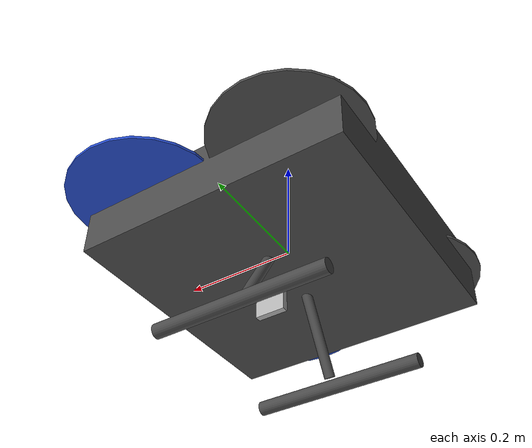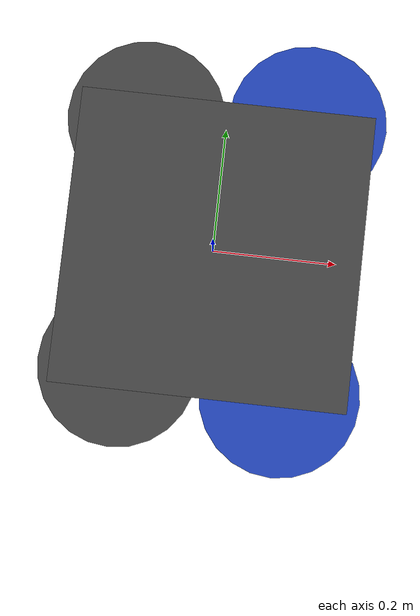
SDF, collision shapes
<!-- DO NOT EDIT: Generated from iris.sdf.jinja -->
<sdf version='1.6'>
  <model name='iris'>
    <link name='base_link'>
      <pose>0 0 0 0 0 0</pose>
      <inertial>
        <pose>0 0 0 0 0 0</pose>
        <mass>1.5</mass>
        <inertia>
          <ixx>0.049125</ixx>
          <ixy>0</ixy>
          <ixz>0</ixz>
          <iyy>0.049125</iyy>
          <iyz>0</iyz>
          <izz>0.055225</izz>
        </inertia>
      </inertial>
      <collision name='base_link_inertia_collision'>
        <pose>0 0 0 0 0 0</pose>
        <geometry>
          <box>
            <size>0.47 0.47 0.11</size>
          </box>
        </geometry>
        <surface>
          <contact>
            <ode>
              <min_depth>0.001</min_depth>
              <max_vel>0</max_vel>
            </ode>
          </contact>
          <friction>
            <ode/>
          </friction>
        </surface>
      </collision>
      <visual name='base_link_inertia_visual'>
        <pose>0 0 0 0 0 0</pose>
        <geometry>
          <mesh>
            <scale>1 1 1</scale>
            <uri>model://iris/meshes/iris.stl</uri>
          </mesh>
        </geometry>
        <material>
          <script>
            <name>Gazebo/DarkGrey</name>
            <uri>file://media/materials/scripts/gazebo.material</uri>
          </script>
        </material>
      </visual>
      <gravity>1</gravity>
      <velocity_decay/>
    </link>
    <link name='/imu_link'>
      <pose>0 0 0 0 0 0</pose>
      <inertial>
        <pose>0 0 0 0 0 0</pose>
        <mass>0.015</mass>
        <inertia>
          <ixx>1e-05</ixx>
          <ixy>0</ixy>
          <ixz>0</ixz>
          <iyy>1e-05</iyy>
          <iyz>0</iyz>
          <izz>1e-05</izz>
        </inertia>
      </inertial>
    </link>
    <joint name='/imu_joint' type='revolute'>
      <child>/imu_link</child>
      <parent>base_link</parent>
      <axis>
        <xyz>1 0 0</xyz>
        <limit>
          <lower>0</lower>
          <upper>0</upper>
          <effort>0</effort>
          <velocity>0</velocity>
        </limit>
        <dynamics>
          <spring_reference>0</spring_reference>
          <spring_stiffness>0</spring_stiffness>
        </dynamics>
        <use_parent_model_frame>1</use_parent_model_frame>
      </axis>
    </joint>
    <link name='rotor_0'>
      <pose>0.13 -0.22 0.023 0 0 0</pose>
      <inertial>
        <pose>0 0 0 0 0 0</pose>
        <mass>0.005</mass>
        <inertia>
          <ixx>9.75e-07</ixx>
          <ixy>0</ixy>
          <ixz>0</ixz>
          <iyy>0.000273104</iyy>
          <iyz>0</iyz>
          <izz>0.000274004</izz>
        </inertia>
      </inertial>
      <collision name='rotor_0_collision'>
        <pose>0 0 0 0 0 0</pose>
        <geometry>
          <cylinder>
            <length>0.005</length>
            <radius>0.128</radius>
          </cylinder>
        </geometry>
        <surface>
          <contact>
            <ode/>
          </contact>
          <friction>
            <ode/>
          </friction>
        </surface>
      </collision>
      <visual name='rotor_0_visual'>
        <pose>0 0 0 0 0 0</pose>
        <geometry>
          <mesh>
            <scale>1 1 1</scale>
            <uri>model://iris/meshes/iris_prop_ccw.dae</uri>
          </mesh>
        </geometry>
        <material>
          <script>
            <name>Gazebo/Blue</name>
            <uri>file://media/materials/scripts/gazebo.material</uri>
          </script>
        </material>
      </visual>
      <gravity>1</gravity>
      <velocity_decay/>
    </link>
    <joint name='rotor_0_joint' type='revolute'>
      <child>rotor_0</child>
      <parent>base_link</parent>
      <axis>
        <xyz>0 0 1</xyz>
        <limit>
          <lower>-1e+16</lower>
          <upper>1e+16</upper>
        </limit>
        <dynamics>
          <spring_reference>0</spring_reference>
          <spring_stiffness>0</spring_stiffness>
        </dynamics>
        <use_parent_model_frame>1</use_parent_model_frame>
      </axis>
    </joint>
    <link name='rotor_1'>
      <pose>-0.13 0.2 0.023 0 0 0</pose>
      <inertial>
        <pose>0 0 0 0 0 0</pose>
        <mass>0.005</mass>
        <inertia>
          <ixx>9.75e-07</ixx>
          <ixy>0</ixy>
          <ixz>0</ixz>
          <iyy>0.000273104</iyy>
          <iyz>0</iyz>
          <izz>0.000274004</izz>
        </inertia>
      </inertial>
      <collision name='rotor_1_collision'>
        <pose>0 0 0 0 0 0</pose>
        <geometry>
          <cylinder>
            <length>0.005</length>
            <radius>0.128</radius>
          </cylinder>
        </geometry>
        <surface>
          <contact>
            <ode/>
          </contact>
          <friction>
            <ode/>
          </friction>
        </surface>
      </collision>
      <visual name='rotor_1_visual'>
        <pose>0 0 0 0 0 0</pose>
        <geometry>
          <mesh>
            <scale>1 1 1</scale>
            <uri>model://iris/meshes/iris_prop_ccw.dae</uri>
          </mesh>
        </geometry>
        <material>
          <script>
            <name>Gazebo/DarkGrey</name>
            <uri>file://media/materials/scripts/gazebo.material</uri>
          </script>
        </material>
      </visual>
      <gravity>1</gravity>
      <velocity_decay/>
    </link>
    <joint name='rotor_1_joint' type='revolute'>
      <child>rotor_1</child>
      <parent>base_link</parent>
      <axis>
        <xyz>0 0 1</xyz>
        <limit>
          <lower>-1e+16</lower>
          <upper>1e+16</upper>
        </limit>
        <dynamics>
          <spring_reference>0</spring_reference>
          <spring_stiffness>0</spring_stiffness>
        </dynamics>
        <use_parent_model_frame>1</use_parent_model_frame>
      </axis>
    </joint>
    <link name='rotor_2'>
      <pose>0.13 0.22 0.023 0 0 0</pose>
      <inertial>
        <pose>0 0 0 0 0 0</pose>
        <mass>0.005</mass>
        <inertia>
          <ixx>9.75e-07</ixx>
          <ixy>0</ixy>
          <ixz>0</ixz>
          <iyy>0.000273104</iyy>
          <iyz>0</iyz>
          <izz>0.000274004</izz>
        </inertia>
      </inertial>
      <collision name='rotor_2_collision'>
        <pose>0 0 0 0 0 0</pose>
        <geometry>
          <cylinder>
            <length>0.005</length>
            <radius>0.128</radius>
          </cylinder>
        </geometry>
        <surface>
          <contact>
            <ode/>
          </contact>
          <friction>
            <ode/>
          </friction>
        </surface>
      </collision>
      <visual name='rotor_2_visual'>
        <pose>0 0 0 0 0 0</pose>
        <geometry>
          <mesh>
            <scale>1 1 1</scale>
            <uri>model://iris/meshes/iris_prop_cw.dae</uri>
          </mesh>
        </geometry>
        <material>
          <script>
            <name>Gazebo/Blue</name>
            <uri>file://media/materials/scripts/gazebo.material</uri>
          </script>
        </material>
      </visual>
      <gravity>1</gravity>
      <velocity_decay/>
    </link>
    <joint name='rotor_2_joint' type='revolute'>
      <child>rotor_2</child>
      <parent>base_link</parent>
      <axis>
        <xyz>0 0 1</xyz>
        <limit>
          <lower>-1e+16</lower>
          <upper>1e+16</upper>
        </limit>
        <dynamics>
          <spring_reference>0</spring_reference>
          <spring_stiffness>0</spring_stiffness>
        </dynamics>
        <use_parent_model_frame>1</use_parent_model_frame>
      </axis>
    </joint>
    <link name='rotor_3'>
      <pose>-0.13 -0.2 0.023 0 0 0</pose>
      <inertial>
        <pose>0 0 0 0 0 0</pose>
        <mass>0.005</mass>
        <inertia>
          <ixx>9.75e-07</ixx>
          <ixy>0</ixy>
          <ixz>0</ixz>
          <iyy>0.000273104</iyy>
          <iyz>0</iyz>
          <izz>0.000274004</izz>
        </inertia>
      </inertial>
      <collision name='rotor_3_collision'>
        <pose>0 0 0 0 0 0</pose>
        <geometry>
          <cylinder>
            <length>0.005</length>
            <radius>0.128</radius>
          </cylinder>
        </geometry>
        <surface>
          <contact>
            <ode/>
          </contact>
          <friction>
            <ode/>
          </friction>
        </surface>
      </collision>
      <visual name='rotor_3_visual'>
        <pose>0 0 0 0 0 0</pose>
        <geometry>
          <mesh>
            <scale>1 1 1</scale>
            <uri>model://iris/meshes/iris_prop_cw.dae</uri>
          </mesh>
        </geometry>
        <material>
          <script>
            <name>Gazebo/DarkGrey</name>
            <uri>file://media/materials/scripts/gazebo.material</uri>
          </script>
        </material>
      </visual>
      <gravity>1</gravity>
      <velocity_decay/>
    </link>
    <joint name='rotor_3_joint' type='revolute'>
      <child>rotor_3</child>
      <parent>base_link</parent>
      <axis>
        <xyz>0 0 1</xyz>
        <limit>
          <lower>-1e+16</lower>
          <upper>1e+16</upper>
        </limit>
        <dynamics>
          <spring_reference>0</spring_reference>
          <spring_stiffness>0</spring_stiffness>
        </dynamics>
        <use_parent_model_frame>1</use_parent_model_frame>
      </axis>
    </joint>
    <plugin name='rosbag' filename='libgazebo_multirotor_base_plugin.so'>
      <robotNamespace/>
      <linkName>base_link</linkName>
      <rotorVelocitySlowdownSim>10</rotorVelocitySlowdownSim>
    </plugin>
    <plugin name='front_right_motor_model' filename='libgazebo_motor_model.so'>
      <robotNamespace/>
      <jointName>rotor_0_joint</jointName>
      <linkName>rotor_0</linkName>
      <turningDirection>ccw</turningDirection>
      <timeConstantUp>0.0125</timeConstantUp>
      <timeConstantDown>0.025</timeConstantDown>
      <maxRotVelocity>1100</maxRotVelocity>
      <motorConstant>5.84e-06</motorConstant>
      <momentConstant>0.06</momentConstant>
      <commandSubTopic>/gazebo/command/motor_speed</commandSubTopic>
      <motorNumber>0</motorNumber>
      <rotorDragCoefficient>0.000175</rotorDragCoefficient>
      <rollingMomentCoefficient>1e-06</rollingMomentCoefficient>
      <motorSpeedPubTopic>/motor_speed/0</motorSpeedPubTopic>
      <rotorVelocitySlowdownSim>10</rotorVelocitySlowdownSim>
    </plugin>
    <plugin name='back_left_motor_model' filename='libgazebo_motor_model.so'>
      <robotNamespace/>
      <jointName>rotor_1_joint</jointName>
      <linkName>rotor_1</linkName>
      <turningDirection>ccw</turningDirection>
      <timeConstantUp>0.0125</timeConstantUp>
      <timeConstantDown>0.025</timeConstantDown>
      <maxRotVelocity>1100</maxRotVelocity>
      <motorConstant>5.84e-06</motorConstant>
      <momentConstant>0.06</momentConstant>
      <commandSubTopic>/gazebo/command/motor_speed</commandSubTopic>
      <motorNumber>1</motorNumber>
      <rotorDragCoefficient>0.000175</rotorDragCoefficient>
      <rollingMomentCoefficient>1e-06</rollingMomentCoefficient>
      <motorSpeedPubTopic>/motor_speed/1</motorSpeedPubTopic>
      <rotorVelocitySlowdownSim>10</rotorVelocitySlowdownSim>
    </plugin>
    <plugin name='front_left_motor_model' filename='libgazebo_motor_model.so'>
      <robotNamespace/>
      <jointName>rotor_2_joint</jointName>
      <linkName>rotor_2</linkName>
      <turningDirection>cw</turningDirection>
      <timeConstantUp>0.0125</timeConstantUp>
      <timeConstantDown>0.025</timeConstantDown>
      <maxRotVelocity>1100</maxRotVelocity>
      <motorConstant>5.84e-06</motorConstant>
      <momentConstant>0.06</momentConstant>
      <commandSubTopic>/gazebo/command/motor_speed</commandSubTopic>
      <motorNumber>2</motorNumber>
      <rotorDragCoefficient>0.000175</rotorDragCoefficient>
      <rollingMomentCoefficient>1e-06</rollingMomentCoefficient>
      <motorSpeedPubTopic>/motor_speed/2</motorSpeedPubTopic>
      <rotorVelocitySlowdownSim>10</rotorVelocitySlowdownSim>
    </plugin>
    <plugin name='back_right_motor_model' filename='libgazebo_motor_model.so'>
      <robotNamespace/>
      <jointName>rotor_3_joint</jointName>
      <linkName>rotor_3</linkName>
      <turningDirection>cw</turningDirection>
      <timeConstantUp>0.0125</timeConstantUp>
      <timeConstantDown>0.025</timeConstantDown>
      <maxRotVelocity>1100</maxRotVelocity>
      <motorConstant>5.84e-06</motorConstant>
      <momentConstant>0.06</momentConstant>
      <commandSubTopic>/gazebo/command/motor_speed</commandSubTopic>
      <motorNumber>3</motorNumber>
      <rotorDragCoefficient>0.000175</rotorDragCoefficient>
      <rollingMomentCoefficient>1e-06</rollingMomentCoefficient>
      <motorSpeedPubTopic>/motor_speed/3</motorSpeedPubTopic>
      <rotorVelocitySlowdownSim>10</rotorVelocitySlowdownSim>
    </plugin>
    <model name='gps0'>
      <link name='link'>
        <pose>0 0 0 0 0 0</pose>
        <inertial>
          <pose>0 0 0 0 0 0</pose>
          <mass>0.01</mass>
          <inertia>
            <ixx>2.1733e-06</ixx>
            <ixy>0</ixy>
            <ixz>0</ixz>
            <iyy>2.1733e-06</iyy>
            <iyz>0</iyz>
            <izz>1.8e-07</izz>
          </inertia>
        </inertial>
        <visual name='visual'>
          <geometry>
            <cylinder>
              <radius>0.01</radius>
              <length>0.002</length>
            </cylinder>
          </geometry>
          <material>
            <script>
              <name>Gazebo/Black</name>
              <uri>__default__</uri>
            </script>
          </material>
        </visual>
        <sensor name='gps' type='gps'>
          <pose>0 0 0 0 0 0</pose>
          <plugin name='gps_plugin' filename='libgazebo_gps_plugin.so'>
            <robotNamespace/>
            <gpsNoise>1</gpsNoise>
            <gpsXYRandomWalk>2.0</gpsXYRandomWalk>
            <gpsZRandomWalk>4.0</gpsZRandomWalk>
            <gpsXYNoiseDensity>0.0002</gpsXYNoiseDensity>
            <gpsZNoiseDensity>0.0004</gpsZNoiseDensity>
            <gpsVXYNoiseDensity>0.2</gpsVXYNoiseDensity>
            <gpsVZNoiseDensity>0.4</gpsVZNoiseDensity>
          </plugin>
        </sensor>
      </link>
    </model>
    <joint name='gps0_joint' type='fixed'>
      <parent>base_link</parent>
      <child>gps0::link</child>
    </joint>
    <plugin name='groundtruth_plugin' filename='libgazebo_groundtruth_plugin.so'>
      <robotNamespace/>
    </plugin>
    <plugin name='magnetometer_plugin' filename='libgazebo_magnetometer_plugin.so'>
      <robotNamespace/>
      <pubRate>100</pubRate>
      <noiseDensity>0.0004</noiseDensity>
      <randomWalk>6.4e-06</randomWalk>
      <biasCorrelationTime>600</biasCorrelationTime>
      <magTopic>/mag</magTopic>
    </plugin>
    <plugin name='barometer_plugin' filename='libgazebo_barometer_plugin.so'>
      <robotNamespace/>
      <pubRate>50</pubRate>
      <baroTopic>/baro</baroTopic>
      <baroDriftPaPerSec>0</baroDriftPaPerSec>
    </plugin>
    <plugin name='mavlink_interface' filename='libgazebo_mavlink_interface.so'>
      <robotNamespace/>
      <imuSubTopic>/imu</imuSubTopic>
      <magSubTopic>/mag</magSubTopic>
      <baroSubTopic>/baro</baroSubTopic>
      <mavlink_addr>INADDR_ANY</mavlink_addr>
      <mavlink_tcp_port>4560</mavlink_tcp_port>
      <mavlink_udp_port>14560</mavlink_udp_port>
      <serialEnabled>0</serialEnabled>
      <serialDevice>/dev/ttyACM0</serialDevice>
      <baudRate>921600</baudRate>
      <qgc_addr>INADDR_ANY</qgc_addr>
      <qgc_udp_port>14550</qgc_udp_port>
      <sdk_addr>INADDR_ANY</sdk_addr>
      <sdk_udp_port>14540</sdk_udp_port>
      <hil_mode>0</hil_mode>
      <hil_state_level>0</hil_state_level>
      <send_vision_estimation>0</send_vision_estimation>
      <send_odometry>1</send_odometry>
      <enable_lockstep>1</enable_lockstep>
      <use_tcp>1</use_tcp>
      <motorSpeedCommandPubTopic>/gazebo/command/motor_speed</motorSpeedCommandPubTopic>
      <control_channels>
        <channel name='rotor1'>
          <input_index>0</input_index>
          <input_offset>0</input_offset>
          <input_scaling>1000</input_scaling>
          <zero_position_disarmed>0</zero_position_disarmed>
          <zero_position_armed>100</zero_position_armed>
          <joint_control_type>velocity</joint_control_type>
        </channel>
        <channel name='rotor2'>
          <input_index>1</input_index>
          <input_offset>0</input_offset>
          <input_scaling>1000</input_scaling>
          <zero_position_disarmed>0</zero_position_disarmed>
          <zero_position_armed>100</zero_position_armed>
          <joint_control_type>velocity</joint_control_type>
        </channel>
        <channel name='rotor3'>
          <input_index>2</input_index>
          <input_offset>0</input_offset>
          <input_scaling>1000</input_scaling>
          <zero_position_disarmed>0</zero_position_disarmed>
          <zero_position_armed>100</zero_position_armed>
          <joint_control_type>velocity</joint_control_type>
        </channel>
        <channel name='rotor4'>
          <input_index>3</input_index>
          <input_offset>0</input_offset>
          <input_scaling>1000</input_scaling>
          <zero_position_disarmed>0</zero_position_disarmed>
          <zero_position_armed>100</zero_position_armed>
          <joint_control_type>velocity</joint_control_type>
        </channel>
        <channel name='rotor5'>
          <input_index>4</input_index>
          <input_offset>1</input_offset>
          <input_scaling>324.6</input_scaling>
          <zero_position_disarmed>0</zero_position_disarmed>
          <zero_position_armed>0</zero_position_armed>
          <joint_control_type>velocity</joint_control_type>
          <joint_control_pid>
            <p>0.1</p>
            <i>0</i>
            <d>0</d>
            <iMax>0.0</iMax>
            <iMin>0.0</iMin>
            <cmdMax>2</cmdMax>
            <cmdMin>-2</cmdMin>
          </joint_control_pid>
          <joint_name>zephyr_delta_wing::propeller_joint</joint_name>
        </channel>
        <channel name='rotor6'>
          <input_index>5</input_index>
          <input_offset>0</input_offset>
          <input_scaling>0.524</input_scaling>
          <zero_position_disarmed>0</zero_position_disarmed>
          <zero_position_armed>0</zero_position_armed>
          <joint_control_type>position</joint_control_type>
          <joint_name>zephyr_delta_wing::flap_left_joint</joint_name>
          <joint_control_pid>
            <p>10.0</p>
            <i>0</i>
            <d>0</d>
            <iMax>0</iMax>
            <iMin>0</iMin>
            <cmdMax>20</cmdMax>
            <cmdMin>-20</cmdMin>
          </joint_control_pid>
        </channel>
        <channel name='rotor7'>
          <input_index>6</input_index>
          <input_offset>0</input_offset>
          <input_scaling>0.524</input_scaling>
          <zero_position_disarmed>0</zero_position_disarmed>
          <zero_position_armed>0</zero_position_armed>
          <joint_control_type>position</joint_control_type>
          <joint_name>zephyr_delta_wing::flap_right_joint</joint_name>
          <joint_control_pid>
            <p>10.0</p>
            <i>0</i>
            <d>0</d>
            <iMax>0</iMax>
            <iMin>0</iMin>
            <cmdMax>20</cmdMax>
            <cmdMin>-20</cmdMin>
          </joint_control_pid>
        </channel>
        <channel name='rotor8'>
          <input_index>7</input_index>
          <input_offset>0</input_offset>
          <input_scaling>0.524</input_scaling>
          <zero_position_disarmed>0</zero_position_disarmed>
          <zero_position_armed>0</zero_position_armed>
          <joint_control_type>position</joint_control_type>
        </channel>
      </control_channels>
    </plugin>
    <static>0</static>
    <plugin name='rotors_gazebo_imu_plugin' filename='libgazebo_imu_plugin.so'>
      <robotNamespace/>
      <linkName>/imu_link</linkName>
      <imuTopic>/imu</imuTopic>
      <gyroscopeNoiseDensity>0.00018665</gyroscopeNoiseDensity>
      <gyroscopeRandomWalk>3.8785e-05</gyroscopeRandomWalk>
      <gyroscopeBiasCorrelationTime>1000.0</gyroscopeBiasCorrelationTime>
      <gyroscopeTurnOnBiasSigma>0.0087</gyroscopeTurnOnBiasSigma>
      <accelerometerNoiseDensity>0.00186</accelerometerNoiseDensity>
      <accelerometerRandomWalk>0.006</accelerometerRandomWalk>
      <accelerometerBiasCorrelationTime>300.0</accelerometerBiasCorrelationTime>
      <accelerometerTurnOnBiasSigma>0.196</accelerometerTurnOnBiasSigma>
    </plugin>

    <link name="right_leg">
      <pose>0 0 0 0 0 0</pose>
      <inertial>
        <!-- place holder -->
        <pose>0 0.14314 -0.187252 0 0 0</pose>
        <mass>0.1</mass>
        <inertia>
          <ixx>0.001</ixx>
          <ixy>0</ixy>
          <ixz>0</ixz>
          <iyy>0.001</iyy>
          <iyz>0</iyz>
          <izz>0.001</izz>
        </inertia>
      </inertial>
      <collision name='collision'>
        <pose>-0.005 0.14314 -0.187252 0 1.56893 0</pose>
        <geometry>
          <cylinder>
            <radius>0.012209</radius>
            <length>0.3</length>
          </cylinder>
        </geometry>
        <surface>
          <friction>
            <ode>
              <mu>1</mu>
              <mu2>1</mu2>
            </ode>
          </friction>
          <contact>
            <ode>
              <kp>1e+8</kp>
              <kd>1</kd>
              <max_vel>0.01</max_vel>
              <min_depth>0.001</min_depth>
            </ode>
          </contact>
        </surface>
      </collision>
      <collision name='collision_bar'>
        <pose>0.00052 0.08503 -0.101187 0.501318 0 0</pose>
        <geometry>
          <cylinder>
            <radius>0.00914984</radius>
            <length>0.176893</length>
          </cylinder>
        </geometry>
        <surface>
          <friction>
            <ode>
              <mu>1</mu>
              <mu2>1</mu2>
            </ode>
          </friction>
          <contact>
            <ode>
              <kp>1e+8</kp>
              <kd>1</kd>
              <max_vel>0.01</max_vel>
              <min_depth>0.001</min_depth>
            </ode>
          </contact>
        </surface>
      </collision>
      <visual name='base_link_right_leg'>
        <pose>0 0 0.02 0 0 0</pose>
        <geometry>
          <mesh>
            <scale>0.001 0.001 0.001</scale>
            <uri>model://typhoon_h480/meshes/leg1_remeshed_v3.stl</uri>
          </mesh>
        </geometry>
        <material>
          <script>
            <name>Gazebo/DarkGrey</name>
            <uri>file://media/materials/scripts/gazebo.material</uri>
          </script>
        </material>
      </visual>
    </link>
    <joint name='right_leg_joint' type='fixed'>
      <child>right_leg</child>
      <parent>base_link</parent>
      <pose>0.00026 0.040515 -0.048 0 0 0</pose>
    </joint>

    <link name="left_leg">
      <inertial>
        <!-- place holder -->
        <pose>0 -0.14314 -0.187252 0 0 0</pose>
        <mass>0.1</mass>
        <inertia>
          <ixx>0.001</ixx>
          <ixy>0</ixy>
          <ixz>0</ixz>
          <iyy>0.001</iyy>
          <iyz>0</iyz>
          <izz>0.001</izz>
        </inertia>
      </inertial>
      <collision name='collision'>
        <pose>-0.005 -0.14314 -0.187252 0 1.56893 0</pose>
        <geometry>
          <cylinder>
            <radius>0.012209</radius>
            <length>0.3</length>
          </cylinder>
        </geometry>
        <surface>
          <friction>
            <ode>
              <mu>1</mu>
              <mu2>1</mu2>
            </ode>
          </friction>
          <contact>
            <ode>
              <kp>1e+8</kp>
              <kd>1</kd>
              <max_vel>0.01</max_vel>
              <min_depth>0.001</min_depth>
            </ode>
          </contact>
        </surface>
      </collision>
      <collision name='collision_bar'>
        <pose>0.00052 -0.08503 -0.101187 -0.501318 0 0</pose>
        <geometry>
          <cylinder>
            <radius>0.00914984</radius>
            <length>0.176893</length>
          </cylinder>
        </geometry>
        <surface>
          <friction>
            <ode>
              <mu>1</mu>
              <mu2>1</mu2>
            </ode>
          </friction>
          <contact>
            <ode>
              <kp>1e+8</kp>
              <kd>1</kd>
              <max_vel>0.01</max_vel>
              <min_depth>0.001</min_depth>
            </ode>
          </contact>
        </surface>
      </collision>
      <visual name='base_link_left_leg'>
        <pose>0 0 0.02 0 0 0</pose>
        <geometry>
          <mesh>
            <scale>0.001 0.001 0.001</scale>
            <uri>model://typhoon_h480/meshes/leg2_remeshed_v3.stl</uri>
          </mesh>
        </geometry>
        <material>
          <script>
            <name>Gazebo/DarkGrey</name>
            <uri>file://media/materials/scripts/gazebo.material</uri>
          </script>
        </material>
      </visual>
    </link>
    <joint name='left_leg_joint' type='fixed'>
      <child>left_leg</child>
      <parent>base_link</parent>
      <pose>0.00026 -0.040515 -0.048 0 0 0</pose>
    </joint>

    <link name='tag_0_link'>
      <pose>0.0 0.05 -0.13 0 0 0</pose>
      <inertial>
        <mass>0.1</mass>
        <inertia>
          <ixx>0.01</ixx>
          <ixy>0</ixy>
          <ixz>0</ixz>
          <iyy>0.01</iyy>
          <iyz>0</iyz>
          <izz>0.01</izz>
        </inertia>
      </inertial>
      <visual name='visual'>
        <geometry>
          <box>
            <size>0.05 0.01 0.05</size>
          </box>
        </geometry>
      </visual>
      <collision name='collision'>
        <geometry>
          <box>
            <size>0.05 0.01 0.05</size>
          </box>
        </geometry>
      </collision>
    </link>

    <joint name='tag_0_joint' type='fixed'>
      <parent>base_link</parent>
      <child>tag_0_link</child>
      <axis>
        <xyz>0 0 1</xyz>
      </axis>
    </joint>

    <!-- r1_rover_0 or rover_uwb -->

    <plugin name="gazebo_ros_uwb" filename="libros2_px4_gazebo_uwb.so">
      <pub_range />
      <anchor_id>tag_0</anchor_id>
      <link_name>tag_0_link</link_name>
      <update_rate>20</update_rate>
      <gaussian_noise>0.01</gaussian_noise>
      <reference_model_name>rover_uwb</reference_model_name>
      <reference_link_name>base_link</reference_link_name>
    </plugin>

    <plugin name="gazebo_ros_p3d" filename="libgazebo_ros_p3d.so">
        <ros>
          <namespace>/uwb_sensor_Iris</namespace>
        </ros>
        <body_name>base_link</body_name>
        <frame_name>world</frame_name>
        <update_rate>50</update_rate>
        <xyz_offset>0 0 0</xyz_offset>
        <rpy_offset>0 0 0</rpy_offset>
        <gaussian_noise>0</gaussian_noise>
    </plugin>

    <link name='cam_ventral'>
      <pose>-0.15 0 0 0 1.57 0</pose>
      <inertial>
        <mass>0.015</mass>
        <inertia>
          <ixx>4.15e-6</ixx>
          <ixy>0</ixy>
          <ixz>0</ixz>
          <iyy>2.407e-6</iyy>
          <iyz>0</iyz>
          <izz>2.407e-6</izz>
        </inertia>
      </inertial>
      <collision name='cam_ventral_collision'>
        <geometry>
          <box>
            <size>0.02 0.04 0.02</size>
          </box>
        </geometry>
        <max_contacts>10</max_contacts>
        <surface>
          <contact>
            <ode/>
          </contact>
          <bounce/>
          <friction>
            <ode/>
          </friction>
        </surface>
      </collision>
      <visual name='cam_ventral_visual'>
        <geometry>
          <box>
            <size>0.02 0.04 0.02</size>
          </box>
        </geometry>
      </visual>
      <sensor name='camera' type='camera'>
        <camera name='cam_ventral'>
          <hfov>62.2</hfov>
          <image>
            <width>640</width>
            <height>480</height>
            <format>R8G8B8</format>
          </image>
          <clip>
            <near>0.1</near>
            <far>100</far>
          </clip>
        <noise>
          <type>gaussian</type>
          <!-- Noise is sampled independently per pixel on each frame.
               That pixel's noise value is added to each of its color
               channels, which at that point lie in the range [0,1]. -->
          <mean>0.0</mean>
          <stddev>0.007</stddev>
        </noise>
        <lens>
          <intrinsics>
            <fx>570.97921243</fx>
            <fy>573.57453263</fy>
            <cx>309.42078176</cx>
            <cy>239.79832231</cy>
            <s>0</s>
          </intrinsics>
        </lens>
        </camera>
        <always_on>1</always_on>
        <update_rate>10</update_rate>
        <visualize>0</visualize>
        <plugin name='camera_plugin' filename='libgazebo_ros_camera.so'>
          <robotNamespace></robotNamespace>
          <alwaysOn>true</alwaysOn>
          <imageTopicName>image_raw</imageTopicName>
          <cameraInfoTopicName>camera_info</cameraInfoTopicName>
          <updateRate>10.0</updateRate>
          <cameraName>cam_ventral</cameraName>
          <frameName>/cam_ventral_link</frameName>
          <hackBaseline>0.07</hackBaseline>
          <distortionK1>0.0814089</distortionK1>
          <distortionK2>-0.48053847</distortionK2>
          <distortionK3>0.80003533</distortionK3>
          <distortionT1>0.0030771</distortionT1>
          <distortionT2>-0.00103507</distortionT2>
          <Cx>309</Cx>
          <Cy>240</Cy>
          <focalLength>571</focalLength>
        </plugin>
      </sensor>
      <self_collide>0</self_collide>
      <kinematic>0</kinematic>
    </link>

    <joint name="cam_ventral_joint" type="fixed">
      <child>cam_ventral</child>
      <parent>base_link</parent>
      <axis>
        <xyz>0 0 1</xyz>
        <limit>
          <upper>0</upper>
          <lower>0</lower>
        </limit>
      </axis>
    </joint>

    <link name='range_sensor_link'>
      <pose>0.13 0 0 0 1.57 0</pose>
      <inertial>
        <mass>0.015</mass>
        <inertia>
          <ixx>4.15e-6</ixx>
          <ixy>0</ixy>
          <ixz>0</ixz>
          <iyy>2.407e-6</iyy>
          <iyz>0</iyz>
          <izz>2.407e-6</izz>
        </inertia>
      </inertial>
      <collision name='range_sensor_link_collision'>
        <geometry>
          <box>
            <size>0.02 0.04 0.02</size>
          </box>
        </geometry>
        <max_contacts>10</max_contacts>
        <surface>
          <contact>
            <ode/>
          </contact>
          <bounce/>
          <friction>
            <ode/>
          </friction>
        </surface>
      </collision>
      <visual name='range_sensor_link_visual'>
        <geometry>
          <box>
            <size>0.02 0.04 0.02</size>
          </box>
        </geometry>
        <material>
          <ambient>0.1 0.1 0.1 1</ambient>
          <diffuse>0.1 0.1 0.2 1</diffuse>
          <specular>0 0 0 0</specular>
          <emissive>0 0 0 1</emissive>
        </material>
      </visual>
      <sensor name="range_sensor" type="ray">
          <always_on>true</always_on>
          <visualize>true</visualize>
          <pose>0.0 0.0 0.0 0 0 0</pose>
          <update_rate>10</update_rate>
          <ray>
              <scan>
                  <vertical>
                      <samples>3</samples>
                      <resolution>1</resolution>
                      <min_angle>-0.01</min_angle>
                      <max_angle>0.01</max_angle>
                  </vertical>
                  <horizontal>
                      <samples>5</samples>
                      <resolution>1</resolution>
                      <min_angle>-0.015</min_angle>
                      <max_angle>0.015</max_angle>
                  </horizontal>
              </scan>
              <range>
                  <min>0.15</min>
                  <max>10</max>
                  <resolution>0.01</resolution>
              </range>
              <noise>
                  <type>gaussian</type>
                  <mean>0.0</mean>
                  <stddev>0.025</stddev>
              </noise>
          </ray>
          <plugin name="bytes_ultrasound" filename="libgazebo_ros_ray_sensor.so">
              <ros>
                  <namespace>drone</namespace>
                  <remapping>~/out:=DistanceSensor_PubSubTopic</remapping>
              </ros>
              <output_type>sensor_msgs/Range</output_type>
              <radiation_type>ultrasound</radiation_type>
              <frame_name>range_dist_sensor</frame_name>
          </plugin>
      </sensor>
      <self_collide>0</self_collide>
      <kinematic>0</kinematic>
    </link>

    <joint name="range_sensor_joint" type="fixed">
      <child>range_sensor_link</child>
      <parent>base_link</parent>
      <axis>
        <xyz>0 0 1</xyz>
        <limit>
          <upper>0</upper>
          <lower>0</lower>
        </limit>
      </axis>
    </joint>

  </model>
</sdf>
